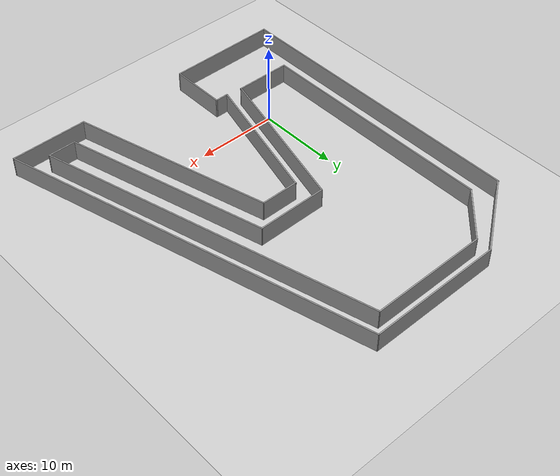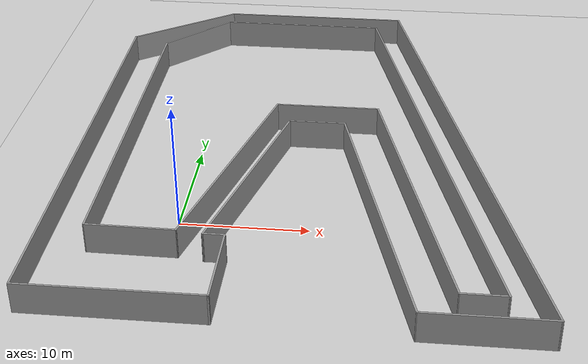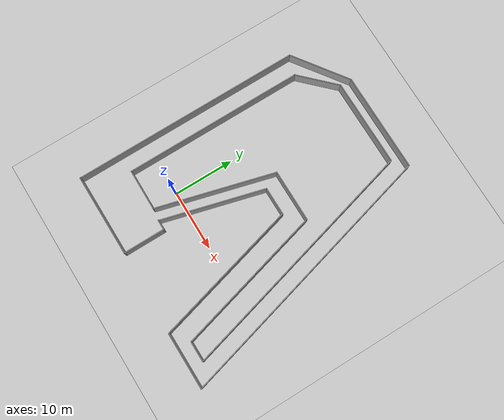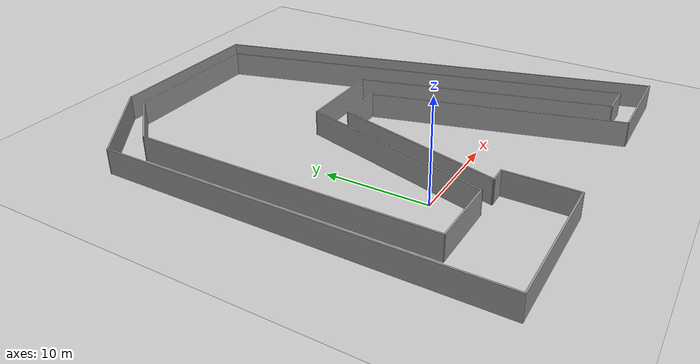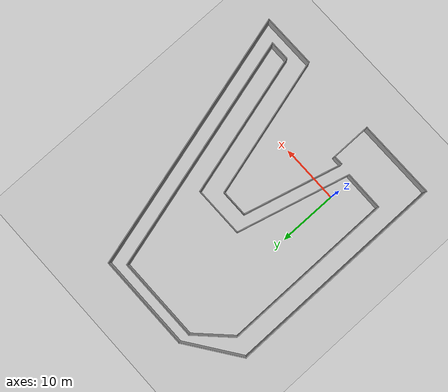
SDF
<sdf version="1.6">
 <world name="default">
  <light name="sun" type="directional">
   <pose>0 0 10 0 -0 0</pose>
   <diffuse>0.8 0.8 0.8 1</diffuse>
   <specular>0.1 0.1 0.1 1</specular>
   <attenuation>
    <range>1000</range>
    <constant>0.9</constant>
    <linear>0.01</linear>
    <quadratic>0.001</quadratic>
   </attenuation>
   <direction>-0.5 0.5 -1</direction>
  </light>
  <model name="ground_plane">
   <static>1</static>
   <link name="link">
    <collision name="collision">
     <geometry><plane><normal>0 0 1</normal><size>100 100</size></plane></geometry>
     <surface><friction><ode><mu>100</mu><mu2>50</mu2></ode></friction></surface>
    </collision>
    <visual name="visual">
     <cast_shadows>0</cast_shadows>
     <geometry><plane><normal>0 0 1</normal><size>100 100</size></plane></geometry>
     <material>
      <script><uri>file://media/materials/scripts/gazebo.material</uri><name>Gazebo/Grey</name></script>
     </material>
    </visual>
   </link>
  </model>
  <gravity>0 0 -9.8</gravity>
  <magnetic_field>6e-06 2.3e-05 -4.2e-05</magnetic_field>
  <atmosphere type="adiabatic"/>
  <physics name="default_physics" default="0" type="ode">
   <max_step_size>0.001</max_step_size>
   <real_time_factor>1</real_time_factor>
   <real_time_update_rate>1000</real_time_update_rate>
  </physics>
  <scene><ambient>0.4 0.4 0.4 1</ambient><background>0.7 0.7 0.7 1</background><shadows>1</shadows></scene>
  <spherical_coordinates>
   <surface_model>EARTH_WGS84</surface_model>
   <latitude_deg>0</latitude_deg>
   <longitude_deg>0</longitude_deg>
   <elevation>0</elevation>
   <heading_deg>0</heading_deg>
  </spherical_coordinates>
  <model name="Pasillo_largo">
   <pose>9.07618 10.493 0 0 -0 0</pose>
   <link name="Wall_10">
    <collision name="Wall_10_Collision">
     <geometry><box><size>9.5 0.15 2.5</size></box></geometry>
     <pose>0 0 1.25 0 -0 0</pose>
    </collision>
    <visual name="Wall_10_Visual">
     <pose>0 0 1.25 0 -0 0</pose>
     <geometry><box><size>9.5 0.15 2.5</size></box></geometry>
     <material>
      <script><uri>file://media/materials/scripts/gazebo.material</uri><name>Gazebo/Grey</name></script>
      <ambient>1 1 1 1</ambient>
     </material>
    </visual>
    <pose>13.7027 -22.1502 0 0 -0 0</pose>
   </link>
   <link name="Wall_11">
    <collision name="Wall_11_Collision">
     <geometry><box><size>46 0.15 2.5</size></box></geometry>
     <pose>0 0 1.25 0 -0 0</pose>
    </collision>
    <visual name="Wall_11_Visual">
     <pose>0 0 1.25 0 -0 0</pose>
     <geometry><box><size>46 0.15 2.5</size></box></geometry>
     <material>
      <script><uri>file://media/materials/scripts/gazebo.material</uri><name>Gazebo/Grey</name></script>
      <ambient>1 1 1 1</ambient>
     </material>
    </visual>
    <pose>12.4443 -0.006351 0 0 -0 1.8326</pose>
   </link>
   <link name="Wall_12">
    <collision name="Wall_12_Collision">
     <geometry><box><size>16.5 0.15 2.5</size></box></geometry>
     <pose>0 0 1.25 0 -0 0</pose>
    </collision>
    <visual name="Wall_12_Visual">
     <pose>0 0 1.25 0 -0 0</pose>
     <geometry><box><size>16.5 0.15 2.5</size></box></geometry>
     <material>
      <script><uri>file://media/materials/scripts/gazebo.material</uri><name>Gazebo/Grey</name></script>
      <ambient>1 1 1 1</ambient>
     </material>
    </visual>
    <pose>-1.66412 22.1375 0 0 -0 3.14159</pose>
   </link>
   <link name="Wall_13">
    <collision name="Wall_13_Collision">
     <geometry><box><size>10.6005 0.15 2.5</size></box></geometry>
     <pose>0 0 1.25 0 -0 0</pose>
    </collision>
    <visual name="Wall_13_Visual">
     <pose>0 0 1.25 0 -0 0</pose>
     <geometry><box><size>10.6005 0.15 2.5</size></box></geometry>
     <material>
      <script><uri>file://media/materials/scripts/gazebo.material</uri><name>Gazebo/Grey</name></script>
      <ambient>1 1 1 1</ambient>
     </material>
    </visual>
    <pose>-14.1021 19.1159 0 0 0 -2.52498</pose>
   </link>
   <link name="Wall_15">
    <collision name="Wall_15_Collision">
     <geometry><box><size>29.75 0.15 2.5</size></box></geometry>
     <pose>0 0 1.25 0 -0 0</pose>
    </collision>
    <visual name="Wall_15_Visual">
     <pose>0 0 1.25 0 -0 0</pose>
     <geometry><box><size>29.75 0.15 2.5</size></box></geometry>
     <material>
      <script><uri>file://media/materials/scripts/gazebo.material</uri><name>Gazebo/Grey</name></script>
      <ambient>1 1 1 1</ambient>
     </material>
    </visual>
    <pose>-15.1574 0.232852 0 0 -0 1.5708</pose>
   </link>
   <link name="Wall_16">
    <collision name="Wall_16_Collision">
     <geometry><box><size>7.5 0.15 2.5</size></box></geometry>
     <pose>0 0 1.25 0 -0 0</pose>
    </collision>
    <visual name="Wall_16_Visual">
     <pose>0 0 1.25 0 -0 0</pose>
     <geometry><box><size>7.5 0.15 2.5</size></box></geometry>
     <material>
      <script><uri>file://media/materials/scripts/gazebo.material</uri><name>Gazebo/Grey</name></script>
      <ambient>1 1 1 1</ambient>
     </material>
    </visual>
    <pose>-12.5588 17.6315 0 0 -0 0.785398</pose>
   </link>
   <link name="Wall_17">
    <collision name="Wall_17_Collision">
     <geometry><box><size>14.5 0.15 2.5</size></box></geometry>
     <pose>0 0 1.25 0 -0 0</pose>
    </collision>
    <visual name="Wall_17_Visual">
     <pose>0 0 1.25 0 -0 0</pose>
     <geometry><box><size>14.5 0.15 2.5</size></box></geometry>
     <material>
      <script><uri>file://media/materials/scripts/gazebo.material</uri><name>Gazebo/Grey</name></script>
      <ambient>1 1 1 1</ambient>
     </material>
    </visual>
    <pose>-2.78514 20.2301 0 0 -0 0</pose>
   </link>
   <link name="Wall_18">
    <collision name="Wall_18_Collision">
     <geometry><box><size>41.75 0.15 2.5</size></box></geometry>
     <pose>0 0 1.25 0 -0 0</pose>
    </collision>
    <visual name="Wall_18_Visual">
     <pose>0 0 1.25 0 -0 0</pose>
     <geometry><box><size>41.75 0.15 2.5</size></box></geometry>
     <material>
      <script><uri>file://media/materials/scripts/gazebo.material</uri><name>Gazebo/Grey</name></script>
      <ambient>1 1 1 1</ambient>
     </material>
    </visual>
    <pose>9.7733 0.138829 0 0 0 -1.309</pose>
   </link>
   <link name="Wall_19">
    <collision name="Wall_19_Collision">
     <geometry><box><size>3.5 0.15 2.5</size></box></geometry>
     <pose>0 0 1.25 0 -0 0</pose>
    </collision>
    <visual name="Wall_19_Visual">
     <pose>0 0 1.25 0 -0 0</pose>
     <geometry><box><size>3.5 0.15 2.5</size></box></geometry>
     <material>
      <script><uri>file://media/materials/scripts/gazebo.material</uri><name>Gazebo/Grey</name></script>
      <ambient>1 1 1 1</ambient>
     </material>
    </visual>
    <pose>13.4817 -19.9524 0 0 -0 3.14159</pose>
   </link>
   <link name="Wall_20">
    <collision name="Wall_20_Collision">
     <geometry><box><size>25.25 0.15 2.5</size></box></geometry>
     <pose>0 0 1.25 0 -0 0</pose>
    </collision>
    <visual name="Wall_20_Visual">
     <pose>0 0 1.25 0 -0 0</pose>
     <geometry><box><size>25.25 0.15 2.5</size></box></geometry>
     <material>
      <script><uri>file://media/materials/scripts/gazebo.material</uri><name>Gazebo/Grey</name></script>
      <ambient>1 1 1 1</ambient>
     </material>
    </visual>
    <pose>8.55856 -7.83006 0 0 -0 1.8326</pose>
   </link>
   <link name="Wall_21">
    <collision name="Wall_21_Collision">
     <geometry><box><size>8.75 0.15 2.5</size></box></geometry>
     <pose>0 0 1.25 0 -0 0</pose>
    </collision>
    <visual name="Wall_21_Visual">
     <pose>0 0 1.25 0 -0 0</pose>
     <geometry><box><size>8.75 0.15 2.5</size></box></geometry>
     <material>
      <script><uri>file://media/materials/scripts/gazebo.material</uri><name>Gazebo/Grey</name></script>
      <ambient>1 1 1 1</ambient>
     </material>
    </visual>
    <pose>1.01038 4.29231 0 0 -0 3.14159</pose>
   </link>
   <link name="Wall_22">
    <collision name="Wall_22_Collision">
     <geometry><box><size>19.75 0.15 2.5</size></box></geometry>
     <pose>0 0 1.25 0 -0 0</pose>
    </collision>
    <visual name="Wall_22_Visual">
     <pose>0 0 1.25 0 -0 0</pose>
     <geometry><box><size>19.75 0.15 2.5</size></box></geometry>
     <material>
      <script><uri>file://media/materials/scripts/gazebo.material</uri><name>Gazebo/Grey</name></script>
      <ambient>1 1 1 1</ambient>
     </material>
    </visual>
    <pose>-5.82605 -5.17376 0 0 0 -1.8326</pose>
   </link>
   <link name="Wall_23">
    <collision name="Wall_23_Collision">
     <geometry><box><size>6.94529 0.15 2.5</size></box></geometry>
     <pose>0 0 1.25 0 -0 0</pose>
    </collision>
    <visual name="Wall_23_Visual">
     <pose>0 0 1.25 0 -0 0</pose>
     <geometry><box><size>6.94529 0.15 2.5</size></box></geometry>
     <material>
      <script><uri>file://media/materials/scripts/gazebo.material</uri><name>Gazebo/Grey</name></script>
      <ambient>1 1 1 1</ambient>
     </material>
    </visual>
    <pose>-11.7599 -14.6035 0 0 -0 3.1309</pose>
   </link>
   <link name="Wall_3">
    <collision name="Wall_3_Collision">
     <geometry><box><size>38 0.15 2.5</size></box></geometry>
     <pose>0 0 1.25 0 -0 0</pose>
    </collision>
    <visual name="Wall_3_Visual">
     <pose>0 0 1.25 0 -0 0</pose>
     <geometry><box><size>38 0.15 2.5</size></box></geometry>
     <material>
      <script><uri>file://media/materials/scripts/gazebo.material</uri><name>Gazebo/Grey</name></script>
      <ambient>1 1 1 1</ambient>
     </material>
    </visual>
    <pose>-18.365 -2.83076 0 0 0 -1.5708</pose>
   </link>
   <link name="Wall_4">
    <collision name="Wall_4_Collision">
     <geometry><box><size>13.75 0.15 2.5</size></box></geometry>
     <pose>0 0 1.25 0 -0 0</pose>
    </collision>
    <visual name="Wall_4_Visual">
     <pose>0 0 1.25 0 -0 0</pose>
     <geometry><box><size>13.75 0.15 2.5</size></box></geometry>
     <material>
      <script><uri>file://media/materials/scripts/gazebo.material</uri><name>Gazebo/Grey</name></script>
      <ambient>1 1 1 1</ambient>
     </material>
    </visual>
    <pose>-11.565 -21.7558 0 0 -0 0</pose>
   </link>
   <link name="Wall_5">
    <collision name="Wall_5_Collision">
     <geometry><box><size>7 0.15 2.5</size></box></geometry>
     <pose>0 0 1.25 0 -0 0</pose>
    </collision>
    <visual name="Wall_5_Visual">
     <pose>0 0 1.25 0 -0 0</pose>
     <geometry><box><size>7 0.15 2.5</size></box></geometry>
     <material>
      <script><uri>file://media/materials/scripts/gazebo.material</uri><name>Gazebo/Grey</name></script>
      <ambient>1 1 1 1</ambient>
     </material>
    </visual>
    <pose>-4.76502 -18.3308 0 0 -0 1.5708</pose>
   </link>
   <link name="Wall_6">
    <collision name="Wall_6_Collision">
     <geometry><box><size>1.75 0.15 2.5</size></box></geometry>
     <pose>0 0 1.25 0 -0 0</pose>
    </collision>
    <visual name="Wall_6_Visual">
     <pose>0 0 1.25 0 -0 0</pose>
     <geometry><box><size>1.75 0.15 2.5</size></box></geometry>
     <material>
      <script><uri>file://media/materials/scripts/gazebo.material</uri><name>Gazebo/Grey</name></script>
      <ambient>1 1 1 1</ambient>
     </material>
    </visual>
    <pose>-5.56502 -14.9058 0 0 -0 3.14159</pose>
   </link>
   <link name="Wall_7">
    <collision name="Wall_7_Collision">
     <geometry><box><size>17.25 0.15 2.5</size></box></geometry>
     <pose>0 0 1.25 0 -0 0</pose>
    </collision>
    <visual name="Wall_7_Visual">
     <pose>0 0 1.25 0 -0 0</pose>
     <geometry><box><size>17.25 0.15 2.5</size></box></geometry>
     <material>
      <script><uri>file://media/materials/scripts/gazebo.material</uri><name>Gazebo/Grey</name></script>
      <ambient>1 1 1 1</ambient>
     </material>
    </visual>
    <pose>-4.15212 -6.64709 0 0 -0 1.309</pose>
   </link>
   <link name="Wall_8">
    <collision name="Wall_8_Collision">
     <geometry><box><size>4.75 0.15 2.5</size></box></geometry>
     <pose>0 0 1.25 0 -0 0</pose>
    </collision>
    <visual name="Wall_8_Visual">
     <pose>0 0 1.25 0 -0 0</pose>
     <geometry><box><size>4.75 0.15 2.5</size></box></geometry>
     <material>
      <script><uri>file://media/materials/scripts/gazebo.material</uri><name>Gazebo/Grey</name></script>
      <ambient>1 1 1 1</ambient>
     </material>
    </visual>
    <pose>0.360781 1.61157 0 0 -0 0</pose>
   </link>
   <link name="Wall_9">
    <collision name="Wall_9_Collision">
     <geometry><box><size>24.75 0.15 2.5</size></box></geometry>
     <pose>0 0 1.25 0 -0 0</pose>
    </collision>
    <visual name="Wall_9_Visual">
     <pose>0 0 1.25 0 -0 0</pose>
     <geometry><box><size>24.75 0.15 2.5</size></box></geometry>
     <material>
      <script><uri>file://media/materials/scripts/gazebo.material</uri><name>Gazebo/Grey</name></script>
      <ambient>1 1 1 1</ambient>
     </material>
    </visual>
    <pose>5.84426 -10.2693 0 0 0 -1.309</pose>
   </link>
   <static>1</static>
  </model>
 </world>
</sdf>
